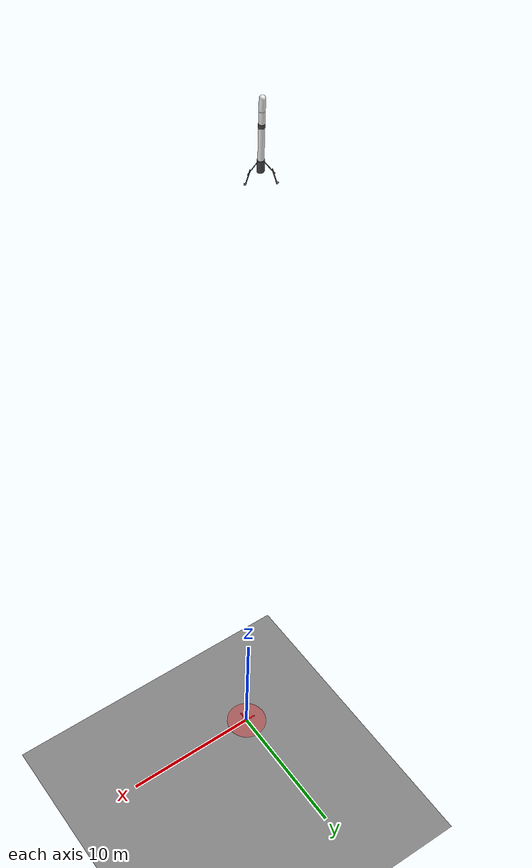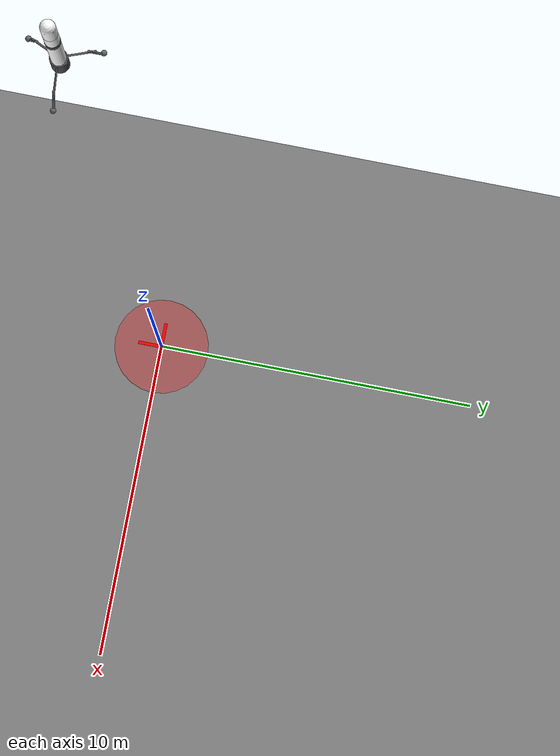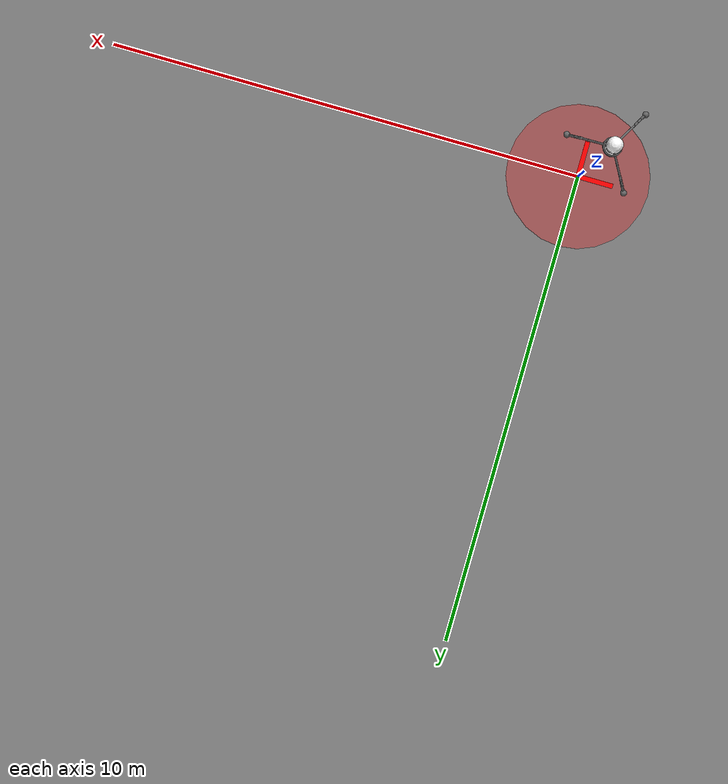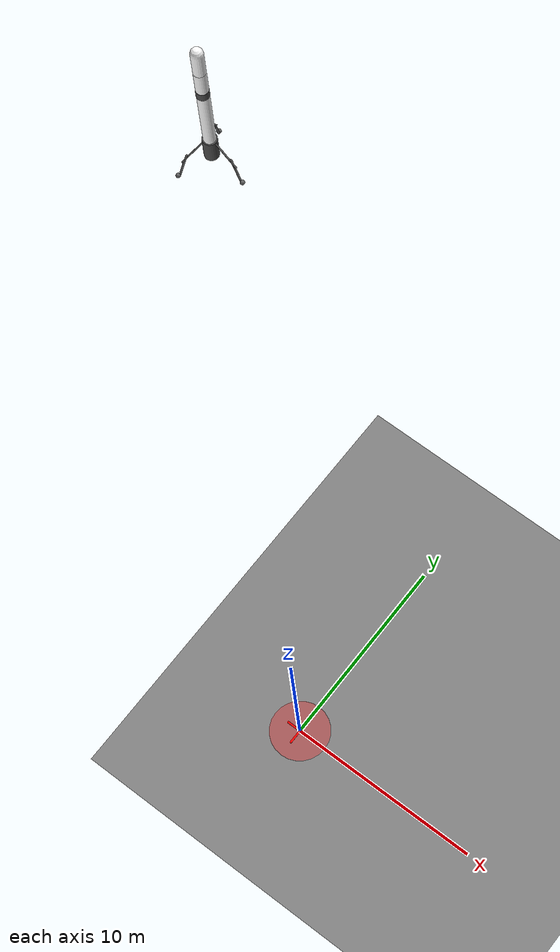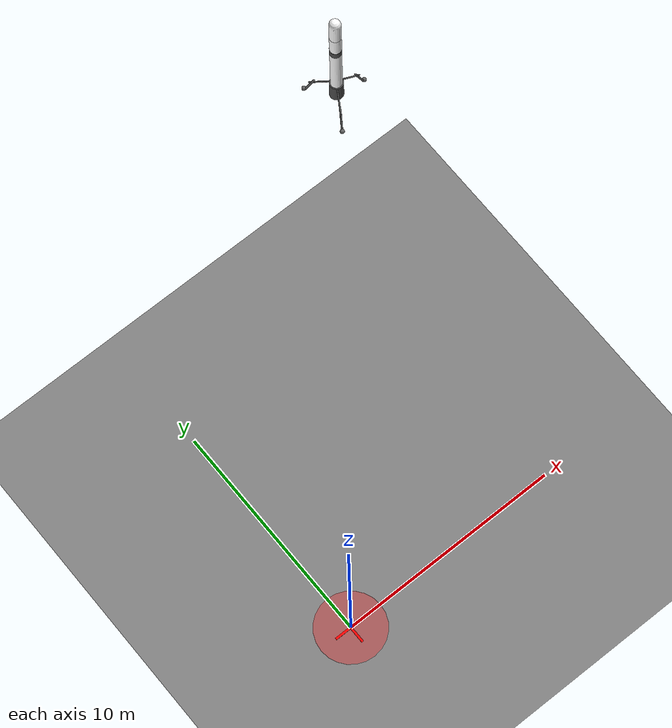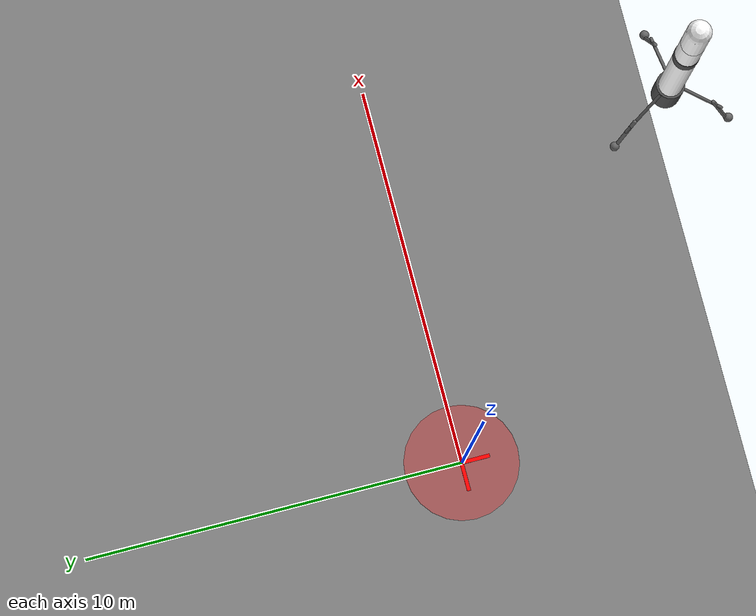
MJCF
<mujoco model="rocket_v1_three_legs">
    <option timestep="0.005"/>

    <asset>
        <texture name="checker" type="2d" builtin="checker" width="100" height="100" rgb1="0.2 0.2 0.2" rgb2="0.8 0.8 0.8"/>
        <material name="ground" texture="checker" texrepeat="20 20" reflectance="0.2"/>
        <material name="target_material" rgba="1 0 0 0.3"/>
        <material name="rocket_body" rgba="1 1 1 1" emission="1"/>
        <material name="rocket_dark" rgba="0.3 0.3 0.3 1" emission="0.5"/>
        <material name="leg_material" rgba="0.4 0.4 0.4 1" emission="0.5"/>
    </asset>

    <worldbody>
        <!-- Floor -->
        <geom name="floor" type="plane" pos="0 0 0" size="20 20 0.1" material="ground"/>

        <!-- Lights (castshadow=false to avoid large shadow on floor) -->
        <light name="light_source" pos="0 0 100" dir="0 0 -1" diffuse="1 1 1" castshadow="false"/>
        <light name="fill_light" pos="10 10 20" dir="-0.5 -0.5 -1" diffuse="0.5 0.5 0.5" castshadow="false"/>
        <light name="ambient" pos="0 0 50" diffuse="0.3 0.3 0.3" ambient="0.2 0.2 0.2" castshadow="false"/>

        <!-- Target Circle -->
        <geom name="target_circle" type="cylinder" size="1.5 0.01" pos="0 0 0.01" material="target_material"/>
        <geom name="target_x1" type="box" size="0.75 0.05 0.01" pos="0 0 0.015" rgba="1 0 0 1"/>
        <geom name="target_x2" type="box" size="0.05 0.75 0.01" pos="0 0 0.015" rgba="1 0 0 1"/>

        <!-- Rocket Body -->
        <body name="rocket" pos="0 0 50">
            <joint name="rocket_free" type="free"/>

            <!-- Main body -->
            <geom name="rocket_body_main" type="cylinder" size="0.15 1.5" pos="0 0 0" material="rocket_body" mass="8"/>

            <!-- Nose cone -->
            <geom name="nose_cone" type="capsule" size="0.15 0.3" pos="0 0 1.8" material="rocket_body" mass="0.5"/>

            <!-- Black interstage band -->
            <geom name="interstage" type="cylinder" size="0.155 0.1" pos="0 0 0.8" material="rocket_dark" mass="0.1"/>

            <!-- Engine section -->
            <geom name="engine_section" type="cylinder" size="0.18 0.3" pos="0 0 -1.2" material="rocket_dark" mass="0.3"/>

            <!-- Landing Leg 1: 0° (positive X) -->
            <body name="leg1" pos="0.15 0 -1.3">
                <geom name="leg1_upper" type="capsule" size="0.02 0.4" pos="0.25 0 0.15" euler="0 -50 0" material="leg_material" mass="0.12"/>
                <geom name="leg1_lower" type="capsule" size="0.025 0.35" pos="0.55 0 -0.25" euler="0 -20 0" material="leg_material" mass="0.1"/>
                <geom name="leg1_foot" type="sphere" size="0.06" pos="0.7 0 -0.55" material="leg_material" mass="0.05"/>
            </body>

            <!-- Landing Leg 2: 120° -->
            <body name="leg2" pos="-0.075 0.13 -1.3" euler="0 0 120">
                <geom name="leg2_upper" type="capsule" size="0.02 0.4" pos="0.25 0 0.15" euler="0 -50 0" material="leg_material" mass="0.12"/>
                <geom name="leg2_lower" type="capsule" size="0.025 0.35" pos="0.55 0 -0.25" euler="0 -20 0" material="leg_material" mass="0.1"/>
                <geom name="leg2_foot" type="sphere" size="0.06" pos="0.7 0 -0.55" material="leg_material" mass="0.05"/>
            </body>

            <!-- Landing Leg 3: 240° -->
            <body name="leg3" pos="-0.075 -0.13 -1.3" euler="0 0 240">
                <geom name="leg3_upper" type="capsule" size="0.02 0.4" pos="0.25 0 0.15" euler="0 -50 0" material="leg_material" mass="0.12"/>
                <geom name="leg3_lower" type="capsule" size="0.025 0.35" pos="0.55 0 -0.25" euler="0 -20 0" material="leg_material" mass="0.1"/>
                <geom name="leg3_foot" type="sphere" size="0.06" pos="0.7 0 -0.55" material="leg_material" mass="0.05"/>
            </body>

            <!-- Thruster site -->
            <site name="thruster_site" pos="0 0 -1.5" size="0.05" rgba="1 0.5 0 1"/>
            <site name="gyro_site" pos="0 0 0" size="0.1"/>

            <!-- Spotlight on rocket (moves with it) -->
            <light name="rocket_spot" pos="3 3 3" dir="-1 -1 -1" diffuse="0.8 0.8 0.8" specular="0.3 0.3 0.3" cutoff="60" castshadow="false"/>
        </body>
    </worldbody>

    <actuator>
        <motor name="thrust_x" site="thruster_site" gear="25 0 0 0 0 0" ctrllimited="true" ctrlrange="-1 1"/>
        <motor name="thrust_y" site="thruster_site" gear="0 25 0 0 0 0" ctrllimited="true" ctrlrange="-1 1"/>
        <motor name="thrust_z" site="thruster_site" gear="0 0 200 0 0 0" ctrllimited="true" ctrlrange="0 1"/>
    </actuator>
</mujoco>
